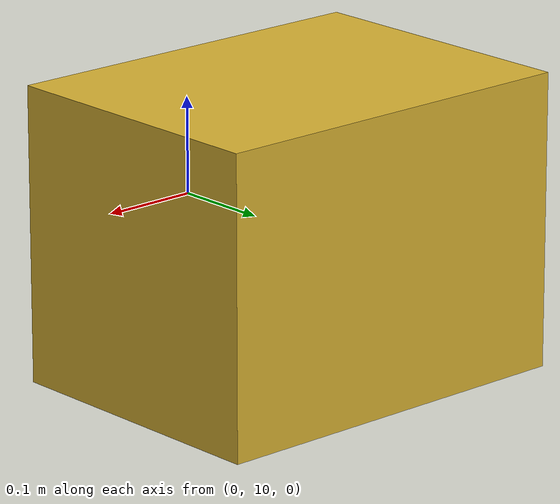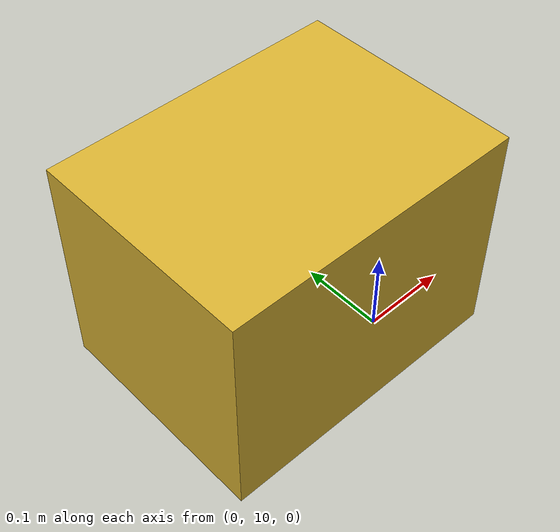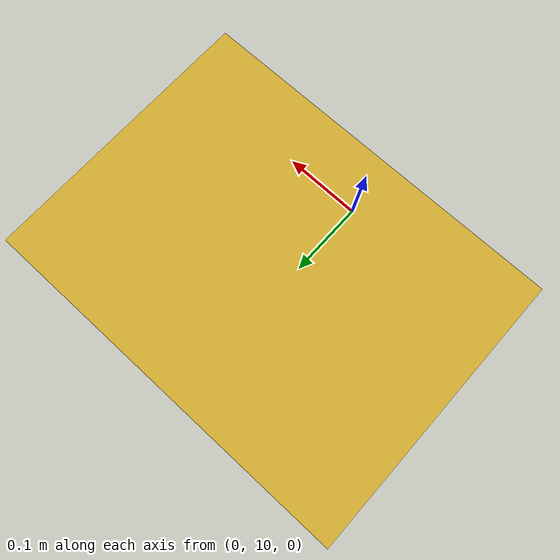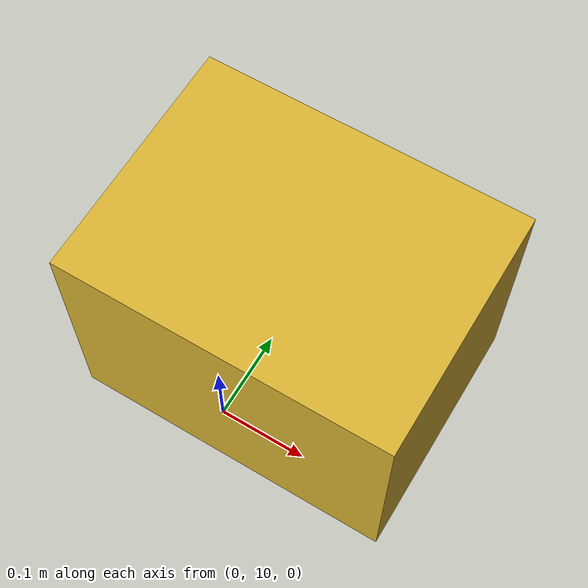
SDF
<?xml version="1.0"?>
<sdf version='1.9'>
<world name='test_world'>
  <include>
    <uri>box</uri>
    <name>first_box</name>

    <pose degrees="true">0 10 0   90 0 0</pose>

  </include>

  <include>
    <uri>box</uri>
    <name>second_box</name>

    <pose rotation_format="quat_xyzw">0 10 0   0.7071068 0 0 0.7071068</pose>
  </include>

  <include>
    <uri>box</uri>
    <name>third_box</name>
    <pose rotation_format="euler_rpy">0 10 0   1.570796326794895 0 0</pose>
  </include>

  <include>
    <uri>box</uri>
    <name>forth_box</name>
    <pose rotation_format="euler_rpy" degrees="false">
      0 10 0   1.570796326794895 0 0
    </pose>
  </include>

  <include>
    <uri>box</uri>
    <name>fifth_box</name>
    <pose rotation_format="euler_rpy" degrees="true">
      0 10 0   90 0 0
    </pose>
  </include>
</world>
</sdf>

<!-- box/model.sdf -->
<sdf version='1.6'>
  <model name="box">
      <pose>0 0 0 0 0 0</pose>
      <link name="top">
        <inertial>
          <mass>1</mass>
        </inertial>
        <collision name="collision">
          <pose>0 0 -0.15 0 0 0</pose>
          <geometry>
            <box>
              <size>0.4 0.3 0.3</size>
            </box>
          </geometry>

        </collision>
        <visual name="visual">
        <pose>0 0 -0.15 0 0 0</pose>
          <geometry>
            <box>
              <size>0.4 0.3 0.3</size>
            </box>
          </geometry>
          <material>
          <lighting>1</lighting>
          <script>
            <uri>file://media/materials/scripts/gazebo.material</uri>
            <name>Gazebo/Gold</name>
          </script>
        </material>
        </visual>
      </link>
    </model>

</sdf>
